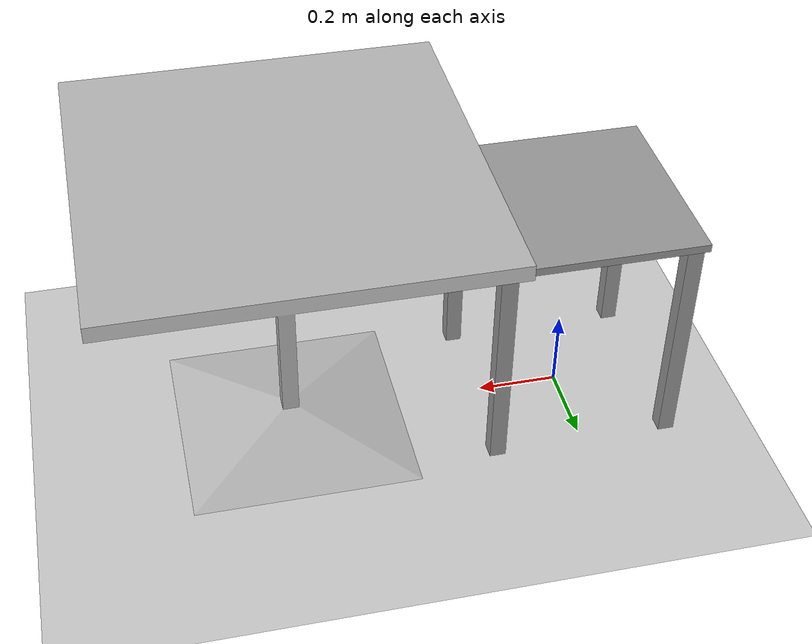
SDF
<?xml version="1.0" ?>
<sdf version="1.6">
  <world name="ur5e_scene">

    <gui>
      <camera name="user_camera">
        <pose>1.4 -2.3 1.4 0.0 0.25 1.9</pose>
      </camera>
    </gui>

    <gravity>0 0 -9.81</gravity>

    <physics name="default_physics" default="0" type="ode">
      <max_step_size>0.001</max_step_size>
      <real_time_factor>1</real_time_factor>
      <real_time_update_rate>1000</real_time_update_rate>
    </physics>

    <scene>
      <ambient>0.4 0.4 0.4 1</ambient>
      <background>0.7 0.7 0.7 1</background>
      <shadows>1</shadows>
    </scene>

    <include>
      <uri>model://sun</uri>
    </include>

    <include>
      <uri>model://ground_plane</uri>
      <pose>0 0 0 0 0 0</pose>
    </include>

    <!-- The robot base. Top plate at z = 0.59 -->
    <include>
      <uri>model://ur5_base</uri>
      <pose>0 0 0 0 0 0</pose>
    </include>

    <!-- Workspace table. Top at z = 0.775 -->
    <include>
      <uri>model://cafe_table</uri>
      <pose>0.7 0 0 0 0 0</pose>
    </include>

  </world>
</sdf>

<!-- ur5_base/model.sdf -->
<sdf version="1.6">
  <model name="ur5_base">
    <static>true</static>

    <link name="top_plate">
      <pose>0 0 0.58 0 0 0</pose>
      <collision name="top_plate_collision">
        <geometry>
          <box>
            <size>0.5 0.5 0.02</size>
          </box>
        </geometry>
        <surface>
          <contact>
            <collide_bitmask>0x01</collide_bitmask>
          </contact>
        </surface>
      </collision>
      <visual name="top_plate_visual">
        <geometry>
          <box>
            <size>0.5 0.5 0.02</size>
          </box>
        </geometry>
        <material>
          <script>
            <uri>file://media/materials/scripts/gazebo.material</uri>
            <name>Gazebo/Grey</name>
          </script>
        </material>
      </visual>
    </link>
    <link name="leg1">
      <pose>0.22 0.22 0.285 0 0 0</pose>
      <collision name="leg1_collision">
        <geometry>
          <box>
            <size>0.04 0.04 0.57</size>
          </box>
        </geometry>
      </collision>
      <visual name="leg1_visual">
        <geometry>
          <box>
            <size>0.04 0.04 0.57</size>
          </box>
        </geometry>
        <material>
          <script>
            <uri>file://media/materials/scripts/gazebo.material</uri>
            <name>Gazebo/Grey</name>
          </script>
        </material>
      </visual>
    </link>
    <link name="leg2">
      <pose>-0.22 0.22 0.285 0 0 0</pose>
      <collision name="leg2_collision">
        <geometry>
          <box>
            <size>0.04 0.04 0.57</size>
          </box>
        </geometry>
      </collision>
      <visual name="leg2_visual">
        <geometry>
          <box>
            <size>0.04 0.04 0.57</size>
          </box>
        </geometry>
        <material>
          <script>
            <uri>file://media/materials/scripts/gazebo.material</uri>
            <name>Gazebo/Grey</name>
          </script>
        </material>
      </visual>
    </link>
    <link name="leg3">
      <pose>0.22 -0.22 0.285 0 0 0</pose>
      <collision name="leg3_collision">
        <geometry>
          <box>
            <size>0.04 0.04 0.57</size>
          </box>
        </geometry>
      </collision>
      <visual name="leg3_visual">
        <geometry>
          <box>
            <size>0.04 0.04 0.57</size>
          </box>
        </geometry>
        <material>
          <script>
            <uri>file://media/materials/scripts/gazebo.material</uri>
            <name>Gazebo/Grey</name>
          </script>
        </material>
      </visual>
    </link>
    <link name="leg4">
      <pose>-0.22 -0.22 0.285 0 0 0</pose>
      <collision name="leg4_collision">
        <geometry>
          <box>
            <size>0.04 0.04 0.57</size>
          </box>
        </geometry>
      </collision>
      <visual name="leg4_visual">
        <geometry>
          <box>
            <size>0.04 0.04 0.57</size>
          </box>
        </geometry>
        <material>
          <script>
            <uri>file://media/materials/scripts/gazebo.material</uri>
            <name>Gazebo/Grey</name>
          </script>
        </material>
      </visual>
    </link>
  </model>
</sdf>

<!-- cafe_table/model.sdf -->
<sdf version="1.4">
  <model name="cafe_table">
    <static>true</static>
    <link name="link">
      <collision name="surface">
        <pose>0 0 0.755 0 0 0</pose>
        <geometry>
          <box>
            <size>0.913 0.913 0.04</size>
          </box>
        </geometry>
      </collision>

      <collision name="column">
        <pose>0 0 0.37 0 0 0</pose>
        <geometry>
          <box>
            <size>0.042 0.042 0.74</size>
          </box>
        </geometry>
      </collision>

      <collision name="base">
        <pose>0 0 0.02 0 0 0</pose>
        <geometry>
          <box>
            <size>0.56 0.56 0.04</size>
          </box>
        </geometry>

       <surface>
        <friction>
          <torsional>
            <coefficient>1.0</coefficient>
            <use_patch_radius>false</use_patch_radius>
            <surface_radius>0.05</surface_radius>
          </torsional>
        </friction>
      </surface>
      </collision>

      <visual name="visual">
        <geometry>
          <mesh>
            <uri>model://cafe_table/meshes/cafe_table.dae</uri>
          </mesh>
        </geometry>
      </visual>
    </link>
  </model>
</sdf>
